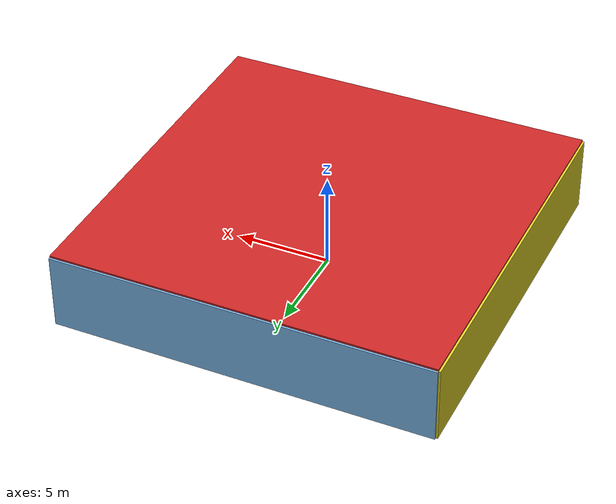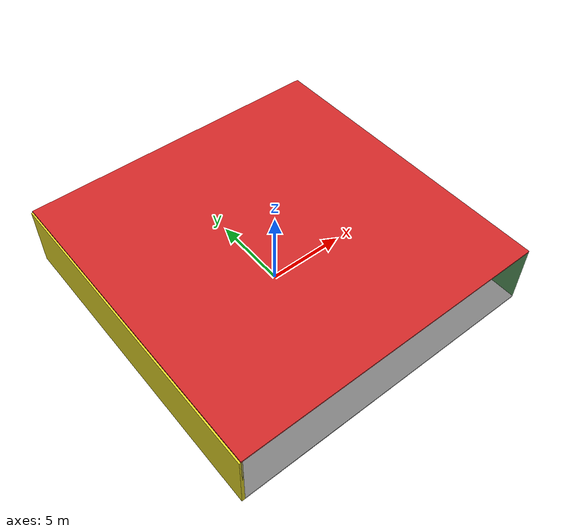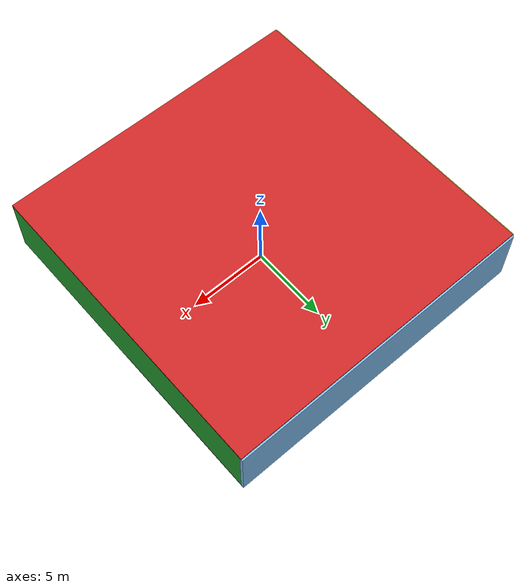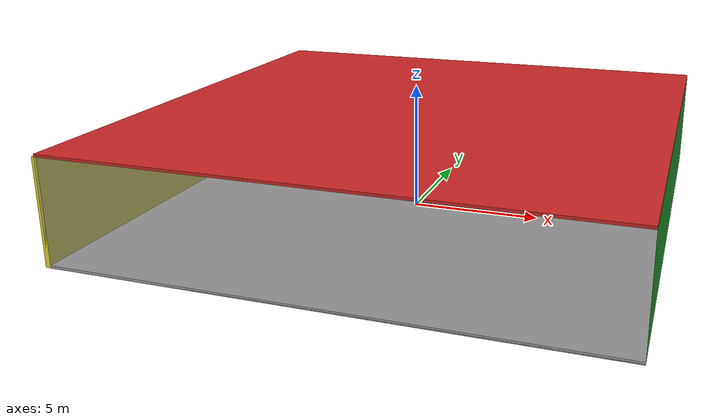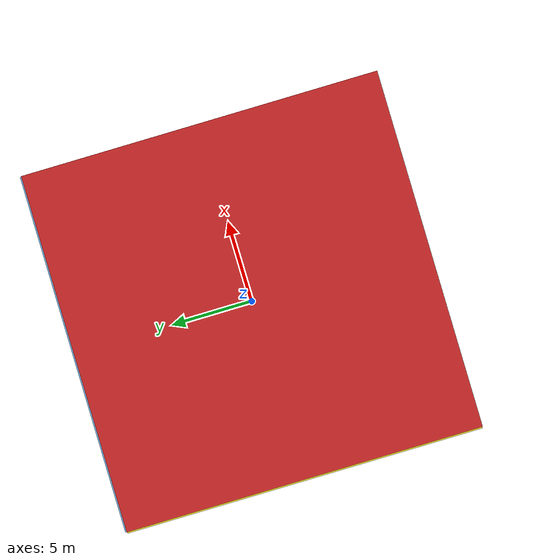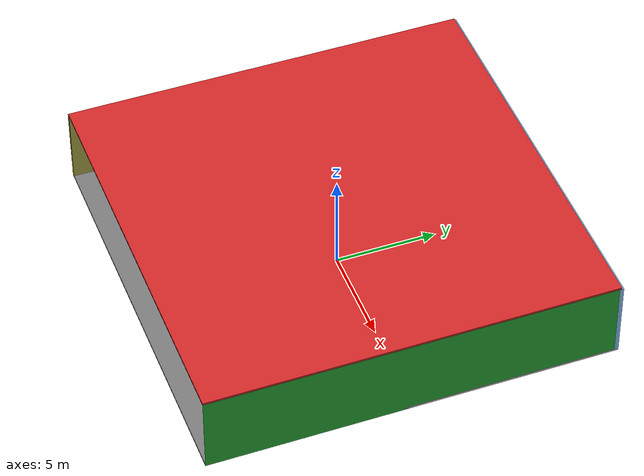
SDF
<sdf version="1.4">
 <world name="default">
  <physics type="ode">
   <max_step_size>0.001</max_step_size>
   <real_time_factor>1</real_time_factor>
   <real_time_update_rate>1000</real_time_update_rate>
   <gravity>0 0 -9.8</gravity>
  </physics>
  <scene><ambient>0.4 0.4 0.4 1</ambient><background>0.7 0.7 0.7 1</background><shadows>1</shadows></scene>
  <model name="Surrounding">
   <static>1</static>
   <link name="Ceiling">
    <collision name="Ceiling_Collision"><geometry><box><size>20 20 0.1</size></box></geometry></collision>
    <visual name="Ceiling_Visual">
     <geometry><box><size>20 20 0.1</size></box></geometry>
     <material>
      <script><uri>file://media/materials/scripts/gazebo.material</uri><name>Gazebo/RedGlow</name></script>
     </material>
    </visual>
    <pose>0 0 4.05 0 0 0</pose>
   </link>
   <link name="Wall_South">
    <collision name="Wall_South_Collision">
     <geometry><box><size>20 0 4</size></box></geometry>
     <pose>0 0 2 0 -0 0</pose>
    </collision>
    <visual name="Wall_South_Visual">
     <pose>0 0 2 0 -0 0</pose>
     <geometry><box><size>20 0 4</size></box></geometry>
     <material>
      <script><uri>file://media/materials/scripts/gazebo.material</uri><name>Gazebo/GreyTransparent</name></script>
     </material>
    </visual>
    <velocity_decay><linear>0</linear><angular>0</angular></velocity_decay>
    <pose>0 -10 0 0 -0 0</pose>
   </link>
   <link name="Wall_East">
    <collision name="Wall_21_Collision">
     <geometry><box><size>20 0 4</size></box></geometry>
     <pose>0 0 2 0 -0 0</pose>
    </collision>
    <visual name="Wall_21_Visual">
     <pose>0 0 2 0 -0 0</pose>
     <geometry><box><size>20 0 4</size></box></geometry>
     <material>
      <script><uri>file://media/materials/scripts/gazebo.material</uri><name>Gazebo/GreenGlow</name></script>
     </material>
    </visual>
    <velocity_decay><linear>0</linear><angular>0</angular></velocity_decay>
    <pose>10 0 0 0 -0 1.5708</pose>
   </link>
   <link name="Wall_North">
    <collision name="Wall_22_Collision">
     <geometry><box><size>20 0.2 4</size></box></geometry>
     <pose>0 0 2 0 -0 0</pose>
    </collision>
    <visual name="Wall_22_Visual">
     <pose>0 0 2 0 -0 0</pose>
     <geometry><box><size>20 0.2 4</size></box></geometry>
     <material>
      <script><uri>file://media/materials/scripts/gazebo.material</uri><name>Gazebo/SkyBlue</name></script>
     </material>
    </visual>
    <velocity_decay><linear>0</linear><angular>0</angular></velocity_decay>
    <pose>0 10 0 0 -0 0</pose>
   </link>
   <link name="Wall_West">
    <collision name="Wall_23_Collision">
     <geometry><box><size>20 0.2 4</size></box></geometry>
     <pose>0 0 2 0 -0 0</pose>
    </collision>
    <visual name="Wall_23_Visual">
     <pose>0 0 2 0 -0 0</pose>
     <geometry><box><size>20 0.2 4</size></box></geometry>
     <material>
      <script><uri>file://media/materials/scripts/gazebo.material</uri><name>Gazebo/YellowGlow</name></script>
     </material>
    </visual>
    <velocity_decay><linear>0</linear><angular>0</angular></velocity_decay>
    <pose>-10 0 0 0 0 -1.5708</pose>
   </link>
   <link name="Ground_link">
    <collision name="collision">
     <pose>0 0 .05 0 -0 0</pose>
     <geometry><box><size>20 20 0.1</size></box></geometry>
    </collision>
    <visual name="visual">
     <pose>0 0 .05 0 -0 0</pose>
     <geometry><box><size>20 20 0.1</size></box></geometry>
     <material>
      <script><uri>file://media/materials/scripts/gazebo.material</uri><name>Gazebo/LightOff</name></script>
     </material>
    </visual>
   </link>
   <static>1</static>
  </model>
  <spherical_coordinates>
   <surface_model>EARTH_WGS84</surface_model>
   <latitude_deg>0</latitude_deg>
   <longitude_deg>0</longitude_deg>
   <elevation>0</elevation>
   <heading_deg>0</heading_deg>
  </spherical_coordinates>
  <light name="lightball_0" type="diffuse">
   <diffuse>0.8 0.8 0.8 1</diffuse>
   <specular>0.2 0.2 0.2 1</specular>
   <attenuation>
    <range>100</range>
    <constant>0.7</constant>
    <linear>0.01</linear>
    <quadratic>0.001</quadratic>
   </attenuation>
   <direction>-0.5 0.1 -0.9</direction>
   <pose>-2.35793234053 -2.14920640045 2.99996685839 0 0 0</pose>
  </light>
  <light name="lightball_1" type="diffuse">
   <diffuse>0.8 0.8 0.8 1</diffuse>
   <specular>0.2 0.2 0.2 1</specular>
   <attenuation>
    <range>100</range>
    <constant>0.7</constant>
    <linear>0.01</linear>
    <quadratic>0.001</quadratic>
   </attenuation>
   <direction>-0.5 0.1 -0.9</direction>
   <pose>-3.57046343825 -0.945297035965 2.82137517957 0 0 0</pose>
  </light>
  <light name="lightball_2" type="diffuse">
   <diffuse>0.8 0.8 0.8 1</diffuse>
   <specular>0.2 0.2 0.2 1</specular>
   <attenuation>
    <range>100</range>
    <constant>0.7</constant>
    <linear>0.01</linear>
    <quadratic>0.001</quadratic>
   </attenuation>
   <direction>-0.5 0.1 -0.9</direction>
   <pose>8.15614623491 6.90209593329 2.22103028952 0 0 0</pose>
  </light>
  <light name="lightball_3" type="diffuse">
   <diffuse>0.8 0.8 0.8 1</diffuse>
   <specular>0.2 0.2 0.2 1</specular>
   <attenuation>
    <range>100</range>
    <constant>0.7</constant>
    <linear>0.01</linear>
    <quadratic>0.001</quadratic>
   </attenuation>
   <direction>-0.5 0.1 -0.9</direction>
   <pose>6.32863344851 4.94143922318 2.36469599731 0 0 0</pose>
  </light>
  <include>
   <uri>model://textured_shapes</uri>
   <pose>-5.28513747653 4.8491436442 0 0 0 2.75814180213</pose>
  </include>
  <include>
   <uri>model://robocup_3Dsim_goal</uri>
   <pose>2.16708565205 8.00493455591 0 0 0 2.01444893065</pose>
  </include>
  <include>
   <uri>model://textured_shapes</uri>
   <pose>6.9235784653 1.51239830074 0 0 0 1.36766595394</pose>
  </include>
 </world>
</sdf>

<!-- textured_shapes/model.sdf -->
<sdf version="1.6">
  <model name="textured_shapes">
    <pose>0 0 0.5 0 0 0</pose>
    <link name="box">
      <pose>0 -1.5 0 0 0 0</pose>
      <collision name="collision">
        <geometry>
          <box>
            <size>1 1 1</size>
          </box>
        </geometry>
      </collision>
      <visual name="visual">
        <geometry>
          <box>
            <size>1 1 1</size>
          </box>
        </geometry>
        <material>
          <script>
            <uri>model://../model_source/models/textured_shapes/materials/scripts</uri>
            <uri>model://../model_source/models/textured_shapes/materials/textures</uri>
            <name>TexturedShape/Squares</name>
          </script>
        </material>
      </visual>
    </link>
    <link name="sphere">
      <collision name="collision">
        <geometry>
          <sphere>
            <radius>0.5</radius>
          </sphere>
        </geometry>
      </collision>
      <visual name="visual">
        <geometry>
          <sphere>
            <radius>0.5</radius>
          </sphere>
        </geometry>
        <material>
          <script>
            <uri>model://../model_source/models/textured_shapes/materials/scripts</uri>
            <uri>model://../model_source/models/textured_shapes/materials/textures</uri>
            <name>TexturedShape/Squares</name>
          </script>
        </material>
      </visual>
    </link>
    <link name="cylinder">
      <pose>0 1.5 0 0 0 0</pose>
      <collision name="collision">
        <geometry>
          <cylinder>
            <radius>0.5</radius>
            <length>1</length>
          </cylinder>
        </geometry>
      </collision>
      <visual name="visual">
        <geometry>
          <cylinder>
            <radius>0.5</radius>
            <length>1</length>
          </cylinder>
        </geometry>
        <material>
          <script>
            <uri>model://../model_source/models/textured_shapes/materials/scripts</uri>
            <uri>model://../model_source/models/textured_shapes/materials/textures</uri>
            <name>TexturedShape/Squares</name>
          </script>
        </material>
      </visual>
    </link>
  </model>
</sdf>

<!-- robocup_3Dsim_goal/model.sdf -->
<sdf version="1.5">
  <model name="robocup_3d_goal">
    <static>true</static>
    <link name="left_post">
      <pose>0 1.05 0.45 0 0 0</pose>
      <collision name="collision">
        <geometry>
          <cylinder>
            <radius>0.05</radius>
            <length>0.9</length>
          </cylinder>
        </geometry>
      </collision>
      <visual name="visual">
        <geometry>
          <cylinder>
            <radius>0.05</radius>
            <length>0.9</length>
          </cylinder>
        </geometry>
        <material>
          <script>
            <uri>file://media/materials/scripts/gazebo.material</uri>
            <name>Gazebo/ZincYellow</name>
          </script>
        </material>
      </visual>
    </link>
    <link name="left_support_horiz_lower">
      <pose>0.30 1.05 0.01 0 0 0</pose>
      <collision name="collision">
        <geometry>
          <box>
            <size>0.50 0.02 0.02</size>
          </box>
        </geometry>
      </collision>
      <visual name="visual">
        <geometry>
          <box>
            <size>0.50 0.02 0.02</size>
          </box>
        </geometry>
        <material>
          <script>
            <uri>file://media/materials/scripts/gazebo.material</uri>
            <name>Gazebo/White</name>
          </script>
        </material>
      </visual>
    </link>
    <link name="left_support_horiz_upper">
      <pose>0.30 1.05 0.79 0 0 0</pose>
      <collision name="collision">
        <geometry>
          <box>
            <size>0.50 0.02 0.02</size>
          </box>
        </geometry>
      </collision>
      <visual name="visual">
        <geometry>
          <box>
            <size>0.50 0.02 0.02</size>
          </box>
        </geometry>
        <material>
          <script>
            <uri>file://media/materials/scripts/gazebo.material</uri>
            <name>Gazebo/White</name>
          </script>
        </material>
      </visual>
    </link>
    <link name="left_support_vertical">
      <pose>0.56 1.05 0.4 0 1.5708 0</pose>
      <collision name="collision">
        <geometry>
          <box>
            <size>0.80 0.02 0.02</size>
          </box>
        </geometry>
      </collision>
      <visual name="visual">
        <geometry>
          <box>
            <size>0.80 0.02 0.02</size>
          </box>
        </geometry>
        <material>
          <script>
            <uri>file://media/materials/scripts/gazebo.material</uri>
            <name>Gazebo/White</name>
          </script>
        </material>
      </visual>
    </link>
    <link name="right_support_horiz_lower">
      <pose>0.30 -1.05 0.01 0 0 0</pose>
      <collision name="collision">
        <geometry>
          <box>
            <size>0.50 0.02 0.02</size>
          </box>
        </geometry>
      </collision>
      <visual name="visual">
        <geometry>
          <box>
            <size>0.50 0.02 0.02</size>
          </box>
        </geometry>
        <material>
          <script>
            <uri>file://media/materials/scripts/gazebo.material</uri>
            <name>Gazebo/White</name>
          </script>
        </material>
      </visual>
    </link>
    <link name="right_support_horiz_upper">
      <pose>0.30 -1.05 0.79 0 0 0</pose>
      <collision name="collision">
        <geometry>
          <box>
            <size>0.50 0.02 0.02</size>
          </box>
        </geometry>
      </collision>
      <visual name="visual">
        <geometry>
          <box>
            <size>0.50 0.02 0.02</size>
          </box>
        </geometry>
        <material>
          <script>
            <uri>file://media/materials/scripts/gazebo.material</uri>
            <name>Gazebo/White</name>
          </script>
        </material>
      </visual>
    </link>
    <link name="right_support_vertical">
      <pose>0.56 -1.05 0.4 0 1.5708 0</pose>
      <collision name="collision">
        <geometry>
          <box>
            <size>0.80 0.02 0.02</size>
          </box>
        </geometry>
      </collision>
      <visual name="visual">
        <geometry>
          <box>
            <size>0.80 0.02 0.02</size>
          </box>
        </geometry>
        <material>
          <script>
            <uri>file://media/materials/scripts/gazebo.material</uri>
            <name>Gazebo/White</name>
          </script>
        </material>
      </visual>
    </link>
    <link name="center_support_horiz_lower">
      <pose>0.56 0 0.01 0 1.5708 0</pose>
      <collision name="collision">
        <geometry>
          <box>
            <size>0.02 2.08 0.02</size>
          </box>
        </geometry>
      </collision>
      <visual name="visual">
        <geometry>
          <box>
            <size>0.02 2.08 0.02</size>
          </box>
        </geometry>
        <material>
          <script>
            <uri>file://media/materials/scripts/gazebo.material</uri>
            <name>Gazebo/White</name>
          </script>
        </material>
      </visual>
    </link>
    <link name="center_support_horiz_upper">
      <pose>0.56 0 0.79 0 1.5708 0</pose>
      <collision name="collision">
        <geometry>
          <box>
            <size>0.02 2.08 0.02</size>
          </box>
        </geometry>
      </collision>
      <visual name="visual">
        <geometry>
          <box>
            <size>0.02 2.08 0.02</size>
          </box>
        </geometry>
        <material>
          <script>
            <uri>file://media/materials/scripts/gazebo.material</uri>
            <name>Gazebo/White</name>
          </script>
        </material>
      </visual>
    </link>
    <link name="right_post">
      <pose>0 -1.05 0.45 0 0 0</pose>
      <collision name="collision">
        <geometry>
          <cylinder>
            <radius>0.05</radius>
            <length>0.9</length>
          </cylinder>
        </geometry>
      </collision>
      <visual name="visual">
        <geometry>
          <cylinder>
            <radius>0.05</radius>
            <length>0.9</length>
          </cylinder>
        </geometry>
        <material>
          <script>
            <uri>file://media/materials/scripts/gazebo.material</uri>
            <name>Gazebo/ZincYellow</name>
          </script>
        </material>
      </visual>
    </link>
    <link name="crossbar">
      <pose>0 0 0.85 1.57 1.57 0</pose>
      <collision name="collision">
        <geometry>
          <cylinder>
            <radius>0.05</radius>
            <length>2.0</length>
          </cylinder>
        </geometry>
      </collision>
      <visual name="visual">
        <geometry>
          <cylinder>
            <radius>0.05</radius>
            <length>2.0</length>
          </cylinder>
        </geometry>
        <material>
          <script>
            <uri>file://media/materials/scripts/gazebo.material</uri>
            <name>Gazebo/ZincYellow</name>
          </script>
        </material>
      </visual>
    </link>
    <link name="center_net">
      <pose>0.56 0 0.40 0 0 0</pose>
      <collision name="collision">
        <geometry>
          <box>
            <size>0.01 2.1 0.80</size>
          </box>
        </geometry>
      </collision>
      <visual name="visual">
        <geometry>
          <box>
            <size>0.01 2.1 0.80</size>
          </box>
        </geometry>
        <material>
          <script>
            <uri>model://../model_source/models/robocup09_spl_field/materials/scripts/</uri>
            <uri>model://../model_source/models/robocup09_spl_field/materials/textures/</uri>
            <name>RoboCup/Net</name>
          </script>
        </material>
      </visual>
    </link>
    <link name="left_net">
      <pose>0.30 1.05 0.40 0 0 0</pose>
      <collision name="collision">
        <geometry>
          <box>
            <size>0.50 0.01 0.76</size>
          </box>
        </geometry>
      </collision>
      <visual name="visual">
        <geometry>
          <box>
            <size>0.50 0.01 0.76</size>
          </box>
        </geometry>
        <material>
          <script>
            <uri>model://../model_source/models/robocup09_spl_field/materials/scripts/</uri>
            <uri>model://../model_source/models/robocup09_spl_field/materials/textures/</uri>
            <name>RoboCup/Net</name>
          </script>
        </material>
      </visual>
    </link>
    <link name="right_net">
      <pose>0.30 -1.05 0.40 0 0 0</pose>
      <collision name="collision">
        <geometry>
          <box>
            <size>0.50 0.01 0.76</size>
          </box>
        </geometry>
      </collision>
      <visual name="visual">
        <geometry>
          <box>
            <size>0.50 0.01 0.76</size>
          </box>
        </geometry>
        <material>
          <script>
            <uri>model://../model_source/models/robocup09_spl_field/materials/scripts/</uri>
            <uri>model://../model_source/models/robocup09_spl_field/materials/textures/</uri>
            <name>RoboCup/Net</name>
          </script>
        </material>
      </visual>
    </link>
  </model>
</sdf>
